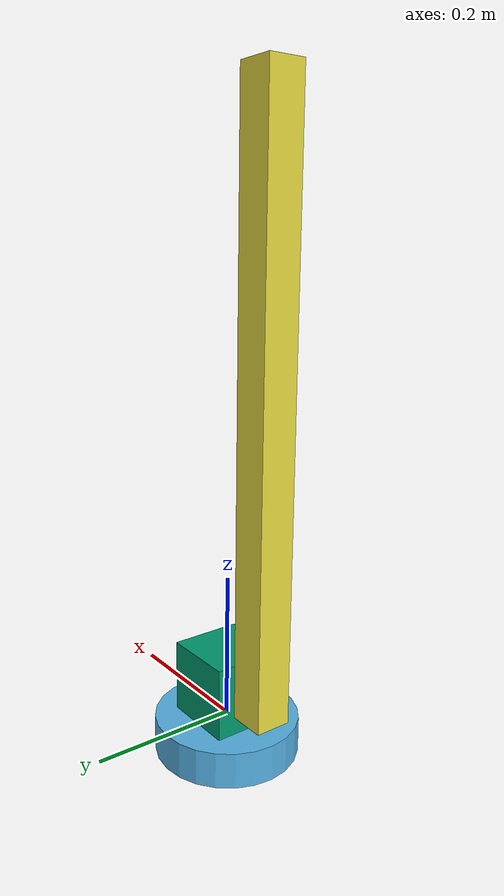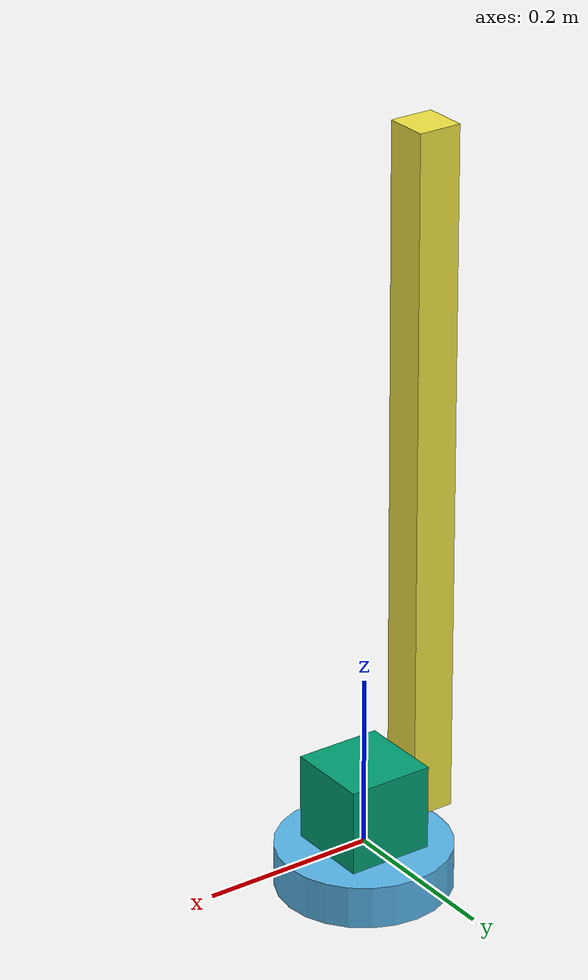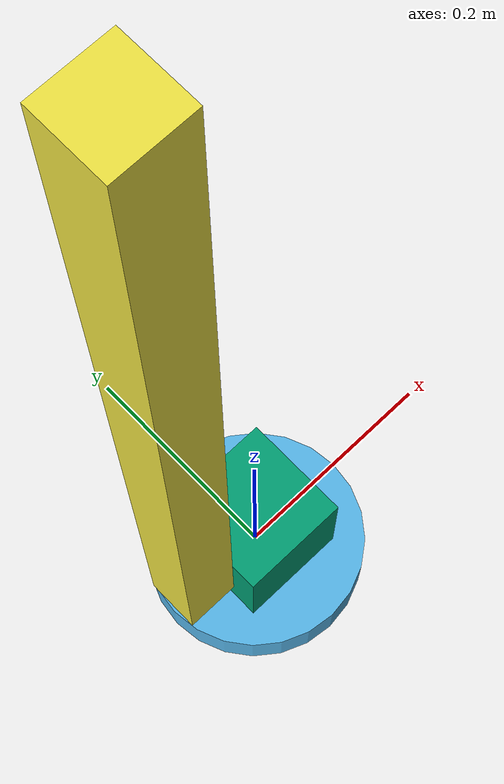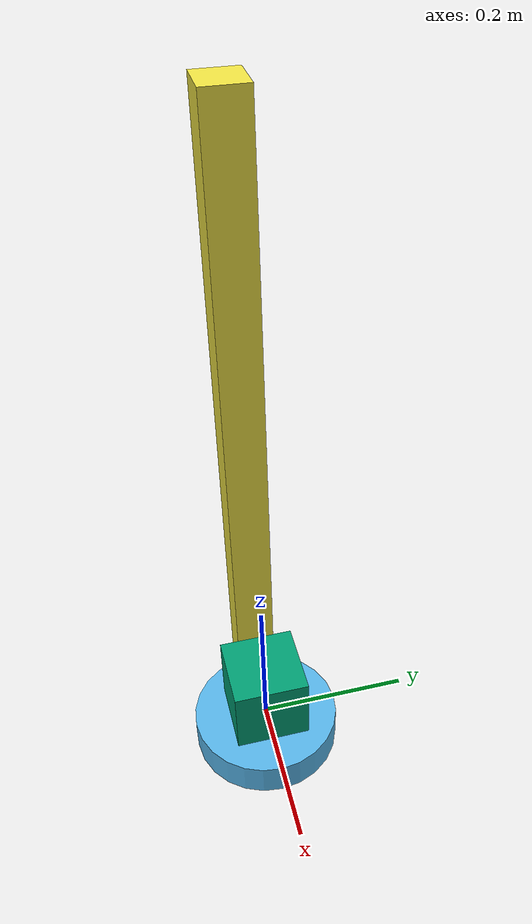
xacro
<?xml version="1.0"?>
<robot name="my_robot" xmlns:xacro="http://www.ros.org/wiki/xacro">

  <!-- properties -->
  <xacro:property name="pi" value="3.141592"/>
  <xacro:property name="l1" value="0.75"/>
  <xacro:property name="l2" value="0.5"/>
  <xacro:property name="lower_limit" value="-6.28"/>
  <xacro:property name="upper_limit" value="6.28"/>
  <xacro:property name="velocity_limit" value="1.0"/>
  <xacro:property name="effort_limit" value="10.0"/>

  <!-- materials -->
  <xacro:include filename="materials.xml"/>

  <!-- gazebo properties -->
  <xacro:include filename="my_robot_gazebo.xml"/>

  <!-- links -->
  <link name="world"/>

  <link name="base_link">
    <visual>
      <geometry>
        <cylinder length="0.05" radius="0.1"/>
      </geometry>
      <origin rpy="0 0 0" xyz="0 0 -0.025"/>
      <material name="dark"/>
    </visual>
    <collision>
      <geometry>
        <cylinder length="0.05" radius="0.1"/>
      </geometry>
      <origin rpy="0 0 0" xyz="0 0 -0.025"/>
    </collision>
    <inertial>
      <origin rpy="0 0 0" xyz="0 0 -0.025"/>
      <mass value="1"/>
      <inertia ixx="1e-6" ixy="0" ixz="0" iyy="1e-6" iyz="0" izz="1e-6"/>
    </inertial>
  </link>

  <link name="link1">
    <visual>
      <geometry>
        <box size="0.1 0.1 0.1"/>
        <!--cylinder length="0.1" radius="0.05"/-->
      </geometry>
      <origin rpy="0 0 0" xyz="0 0 0.05"/>
      <material name="light"/>
    </visual>
    <collision>
      <geometry>
        <box size="0.1 0.1 0.1"/>
      </geometry>
      <origin rpy="0 0 0" xyz="0 0 0.05"/>
    </collision>
    <inertial>
      <origin rpy="0 0 0" xyz="0 0 0.05"/>
      <mass value="1"/>
      <inertia ixx="1e-6" ixy="0" ixz="0" iyy="1e-6" iyz="0" izz="1e-6"/>
    </inertial>
  </link>

  <link name="link2">
    <visual>
      <geometry>
        <box size="${l1+0.05} 0.05 0.05"/>
      </geometry>
      <origin rpy="0 0 0" xyz="${l1/2} 0 0.075"/>
      <material name="dark"/>
    </visual>
    <collision>
      <geometry>
        <box size="${l1+0.05} 0.05 0.05"/>
      </geometry>
      <origin rpy="0 0 0" xyz="${l1/2} 0 0.075"/>
    </collision>
    <inertial>
      <origin rpy="0 0 0" xyz="${l1/2} 0 0.075"/>
      <mass value="1"/>
      <inertia ixx="1e-6" ixy="0" ixz="0" iyy="1e-6" iyz="0" izz="1e-6"/>
    </inertial>
  </link>

  <!-- joints -->
  <joint name="fixed" type="fixed">
    <parent link="world"/>
    <child link="base_link"/>
  </joint>

  <joint name="joint1" type="revolute">
    <parent link="base_link"/>
    <child link="link1"/>
    <origin rpy="0 0 0" xyz="0 0 0"/>
    <axis xyz="0 0 1"/>
    <limit lower="${lower_limit}" upper="${upper_limit}" velocity="${velocity_limit}" effort="${effort_limit}"/>
    <dynamics damping="0.7" friction="10.0"/>
  </joint>

  <joint name="joint2" type="revolute">
    <parent link="link1"/>
    <child link="link2"/>
    <origin rpy="0 -1.57 0" xyz="0 0 0.05"/>
    <axis xyz="0 0 1"/>
    <limit lower="${lower_limit}" upper="${upper_limit}" velocity="${velocity_limit}" effort="${effort_limit}"/>
    <dynamics damping="0.7" friction="10.0"/>
  </joint>

  <!-- transmissions -->
  <transmission name="trans_joint1">
    <type>transmission_interface/SimpleTransmission</type>
    <joint name="joint1">
      <hardwareInterface>hardware_interface/EffortJointInterface</hardwareInterface>
    </joint>
    <actuator name="joint1_motor">
      <mechanicalReduction>1</mechanicalReduction>
      <hardwareInterface>hardware_interface/EffortJointInterface</hardwareInterface>
    </actuator>
  </transmission>

  <transmission name="trans_joint2">
    <type>transmission_interface/SimpleTransmission</type>
    <joint name="joint2">
      <hardwareInterface>hardware_interface/EffortJointInterface</hardwareInterface>
    </joint>
    <actuator name="joint2_motor">
      <mechanicalReduction>1</mechanicalReduction>
      <hardwareInterface>hardware_interface/EffortJointInterface</hardwareInterface>
    </actuator>
  </transmission>

  <transmission name="trans_joint3">
    <type>transmission_interface/SimpleTransmission</type>
    <joint name="joint3">
      <hardwareInterface>hardware_interface/EffortJointInterface</hardwareInterface>
    </joint>
    <actuator name="joint3_motor">
      <mechanicalReduction>1</mechanicalReduction>
      <hardwareInterface>hardware_interface/EffortJointInterface</hardwareInterface>
    </actuator>
  </transmission>

  <transmission name="trans_joint4">
    <type>transmission_interface/SimpleTransmission</type>
    <joint name="joint4">
      <hardwareInterface>hardware_interface/EffortJointInterface</hardwareInterface>
    </joint>
    <actuator name="joint4_motor">
      <mechanicalReduction>1</mechanicalReduction>
      <hardwareInterface>hardware_interface/EffortJointInterface</hardwareInterface>
    </actuator>
  </transmission>

  <transmission name="trans_joint5">
    <type>transmission_interface/SimpleTransmission</type>
    <joint name="joint5">
      <hardwareInterface>hardware_interface/EffortJointInterface</hardwareInterface>
    </joint>
    <actuator name="joint5_motor">
      <mechanicalReduction>1</mechanicalReduction>
      <hardwareInterface>hardware_interface/EffortJointInterface</hardwareInterface>
    </actuator>
  </transmission>

  <transmission name="trans_joint6">
    <type>transmission_interface/SimpleTransmission</type>
    <joint name="joint6">
      <hardwareInterface>hardware_interface/EffortJointInterface</hardwareInterface>
    </joint>
    <actuator name="joint6_motor">
      <mechanicalReduction>1</mechanicalReduction>
      <hardwareInterface>hardware_interface/EffortJointInterface</hardwareInterface>
    </actuator>
  </transmission>

</robot>
